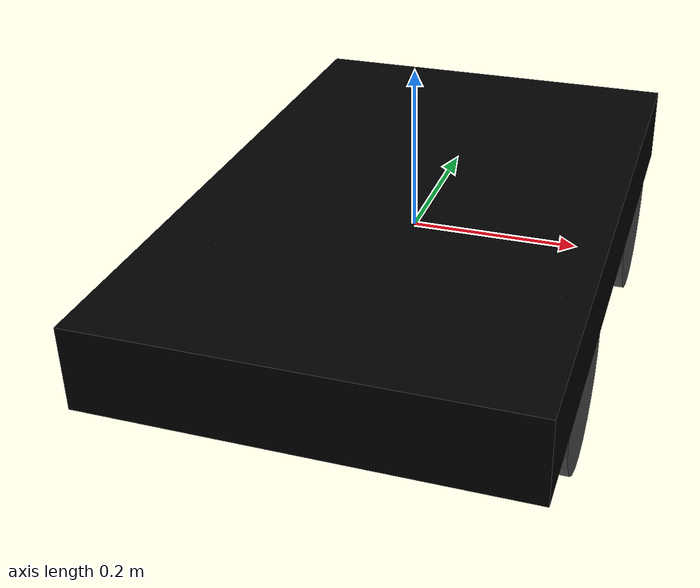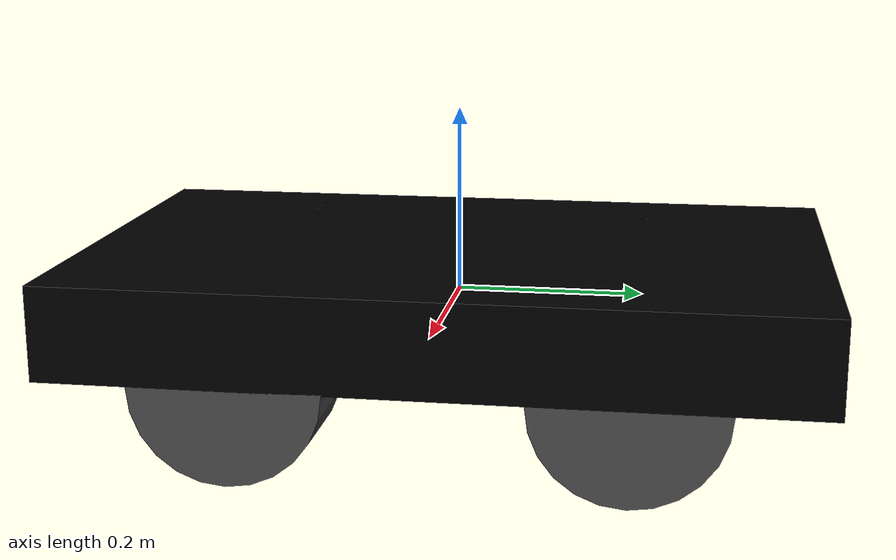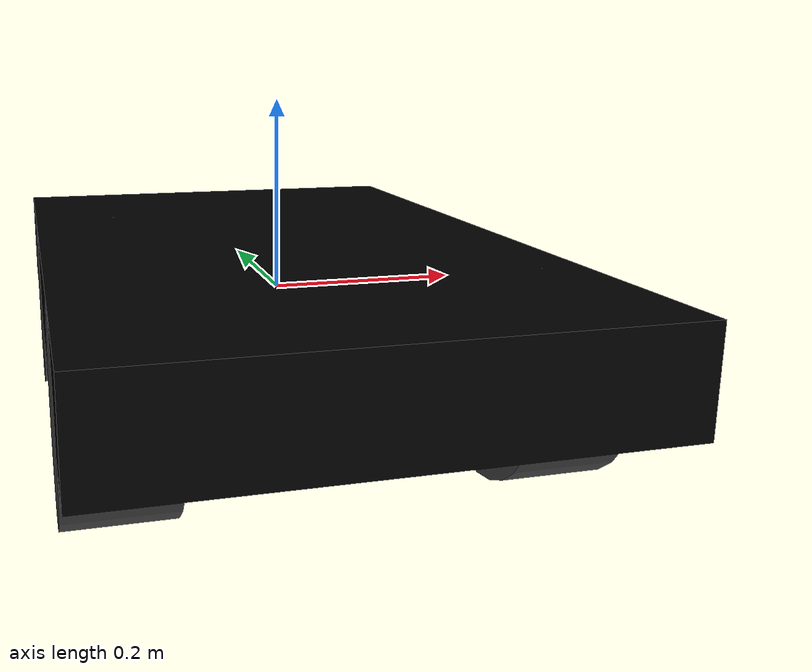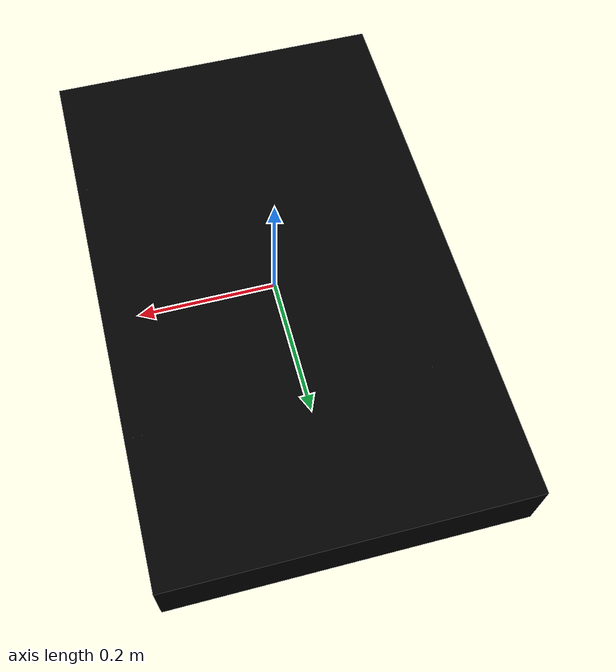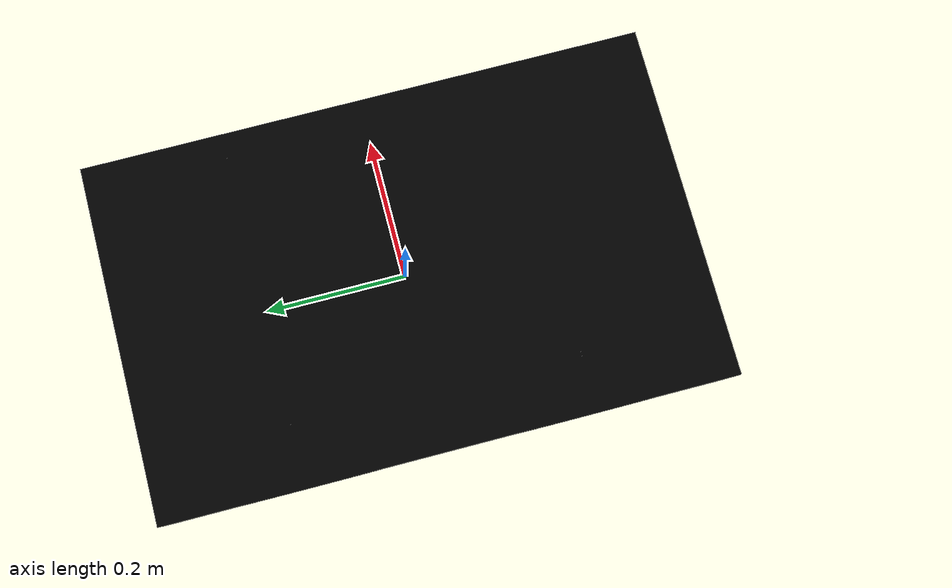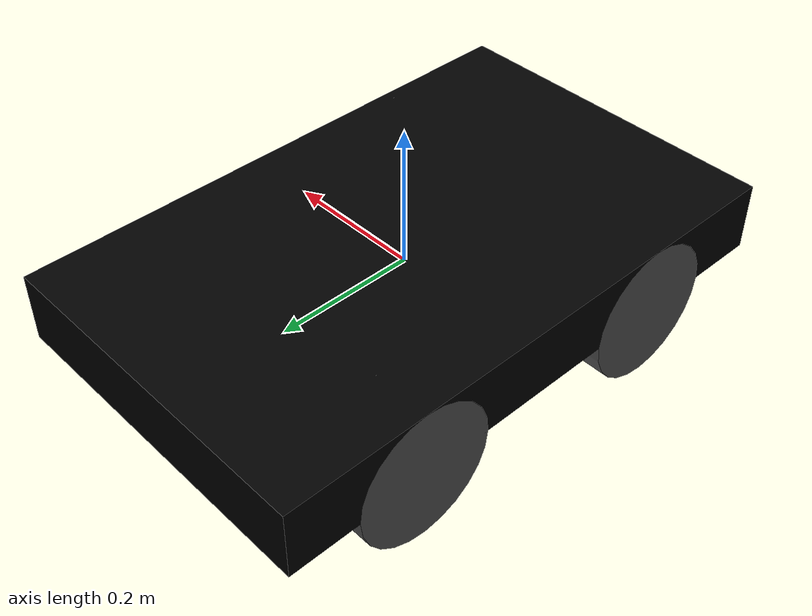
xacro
<robot xmlns:xacro="http://www.ros.org/wiki/xacro" name="roche">

<xacro:include filename="materials.urdf.xacro"/>
<xacro:property name="wheel_diameter" value="0.2"/>
<xacro:property name="wheel_height" value="0.1"/>
<xacro:property name="wheel_distance" value="0.4"/>
<xacro:property name="wheel_material" value="DarkGray"/>
<xacro:property name="wheel_offset_z" value="-0.05"/>

<!--Links-->
	<link name="base_link">
		<visual>
			<geometry>
				<box size="0.5 0.8 0.1"/>
			</geometry>
			<material name="Black"/>
		</visual>
	</link>

	<link name="wheel_l_b">
		<visual>
			<geometry>
				<cylinder length="${wheel_height}" radius="${wheel_diameter/2}"/>
			</geometry>
			<material name="${wheel_material}"/>
		</visual>
	</link>

	<link name="wheel_r_b">
		<visual>
			<geometry>
				<cylinder length="${wheel_height}" radius="${wheel_diameter/2}"/>
			</geometry>
			<material name="${wheel_material}"/>
		</visual>
	</link>

	<link name="wheel_l_f">
		<visual>
			<geometry>
				<cylinder length="${wheel_height}" radius="${wheel_diameter/2}"/>
			</geometry>
			<material name="${wheel_material}"/>
		</visual>
	</link>

	<link name="wheel_r_f">
		<visual>
			<geometry>
				<cylinder length="${wheel_height}" radius="${wheel_diameter/2}"/>
			</geometry>
			<material name="${wheel_material}"/>
		</visual>
	</link>

<!--Joints-->
	<joint name="wheel_l_b_joint" type="continuous">
		<parent link="base_link"/>
		<child link="wheel_l_b"/>
		<origin xyz="${-wheel_distance/2} -0.2 ${wheel_offset_z}" rpy="0 1.57075 0" />
		<axis xyz=" 0 0 -1"/>
	</joint>

	<joint name="wheel_r_b_joint" type="continuous">
		<parent link="base_link"/>
		<child link="wheel_r_b"/>
		<origin xyz="${wheel_distance/2} -0.2 ${wheel_offset_z}" rpy="0 1.57075 0" />
		<axis xyz="0 0 1"/>
	</joint>

	<joint name="wheel_l_f_joint" type="continuous">
		<parent link="base_link"/>
		<child link="wheel_l_f"/>
		<origin xyz="${-wheel_distance/2} 0.2 ${wheel_offset_z}" rpy="0 1.57075 0" />
		<axis xyz=" 0 0 -1"/>
	</joint>

	<joint name="wheel_r_f_joint" type="continuous">
		<parent link="base_link"/>
		<child link="wheel_r_f"/>
		<origin xyz="${wheel_distance/2} 0.2 ${wheel_offset_z}" rpy="0 1.57075 0" />
		<axis xyz="0 0 1"/>
	</joint>

	<!--Transmissions-->
<transmission name="wheel_l_b_transmission">
	<type>transmission_interface/SimpleTransmission</type>
	<joint name="wheel_l_b_joint"/>
	<actuator name="motor_l">
		<mechanicalReduction>30</mechanicalReduction>
	</actuator>
</transmission>

<transmission name="wheel_r_b_transmission">
	<type>transmission_interface/SimpleTransmission</type>
	<joint name="wheel_r_b_joint"/>
	<actuator name="motor_r">
		<mechanicalReduction>30</mechanicalReduction>
	</actuator>
</transmission>

</robot>

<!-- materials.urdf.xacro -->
<robot name="materials">
  <material name="Black">
    <color rgba="0.0 0.0 0.0 1.0"/>
  </material>

  <material name="Blue">
    <color rgba="0.0 0.0 0.8 1.0"/>
  </material>

  <material name="Green">
    <color rgba="0.0 0.8 0.0 1.0"/>
  </material>

  <material name="Gray">
    <color rgba="0.7 0.7 0.7 1.0"/>
  </material>

  <material name="DarkGray">
    <color rgba="0.3 0.3 0.3 1.0"/>
  </material>

  <material name="Red">
    <color rgba="0.8 0.0 0.0 1.0"/>
  </material>

  <material name="White">
    <color rgba="1.0 1.0 1.0 1.0"/>
  </material>

  <material name="Yellow">
    <color rgba="0.8 0.8 0.0 1.0"/>
  </material>
</robot>
